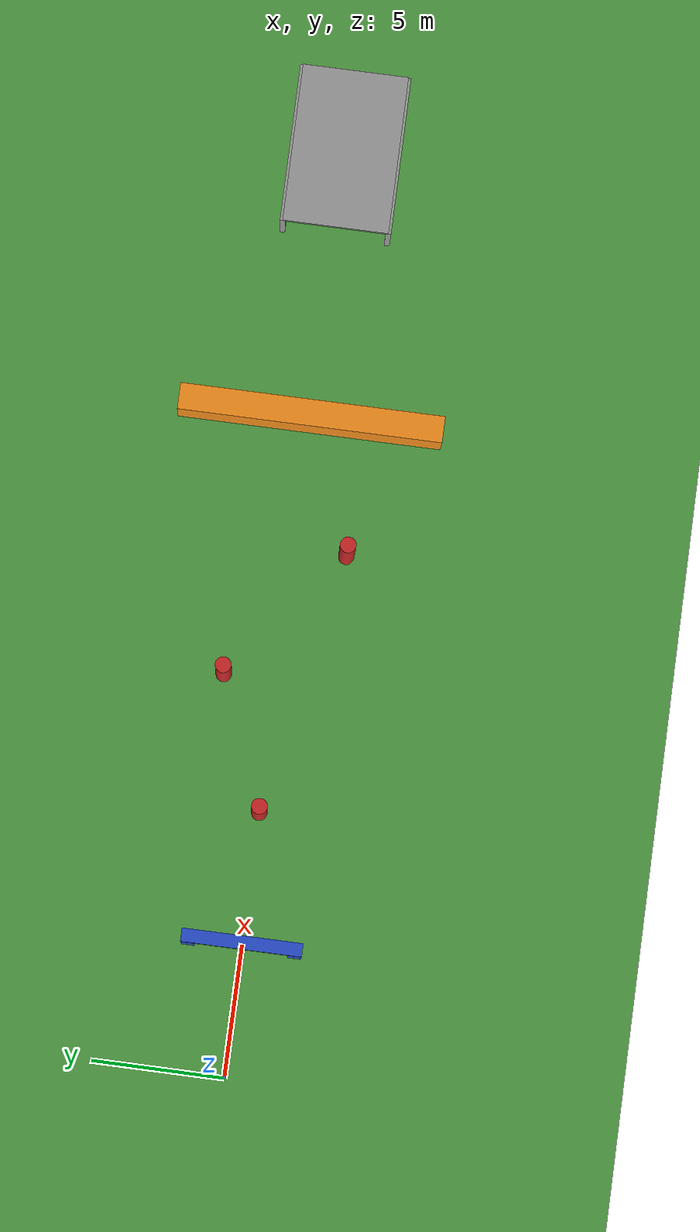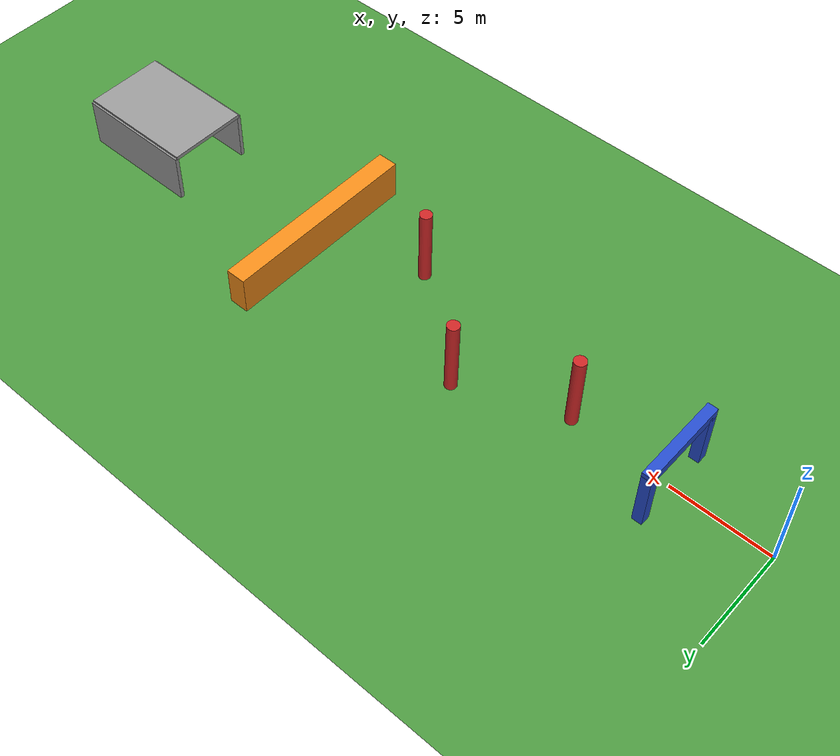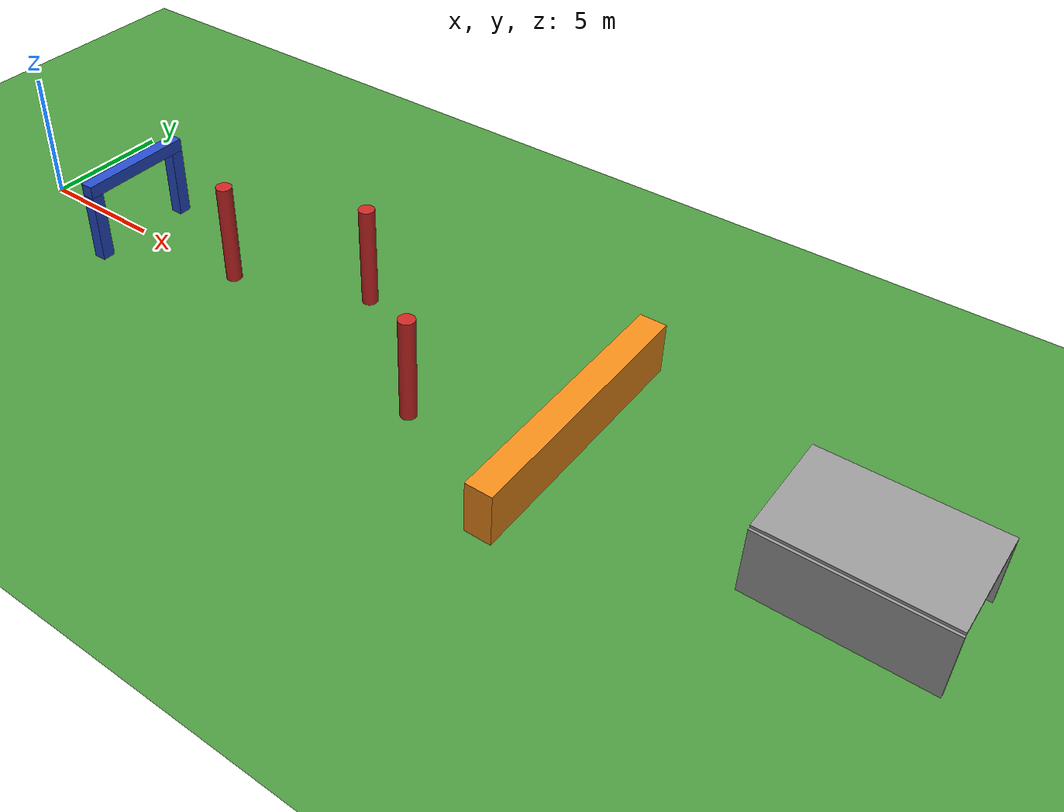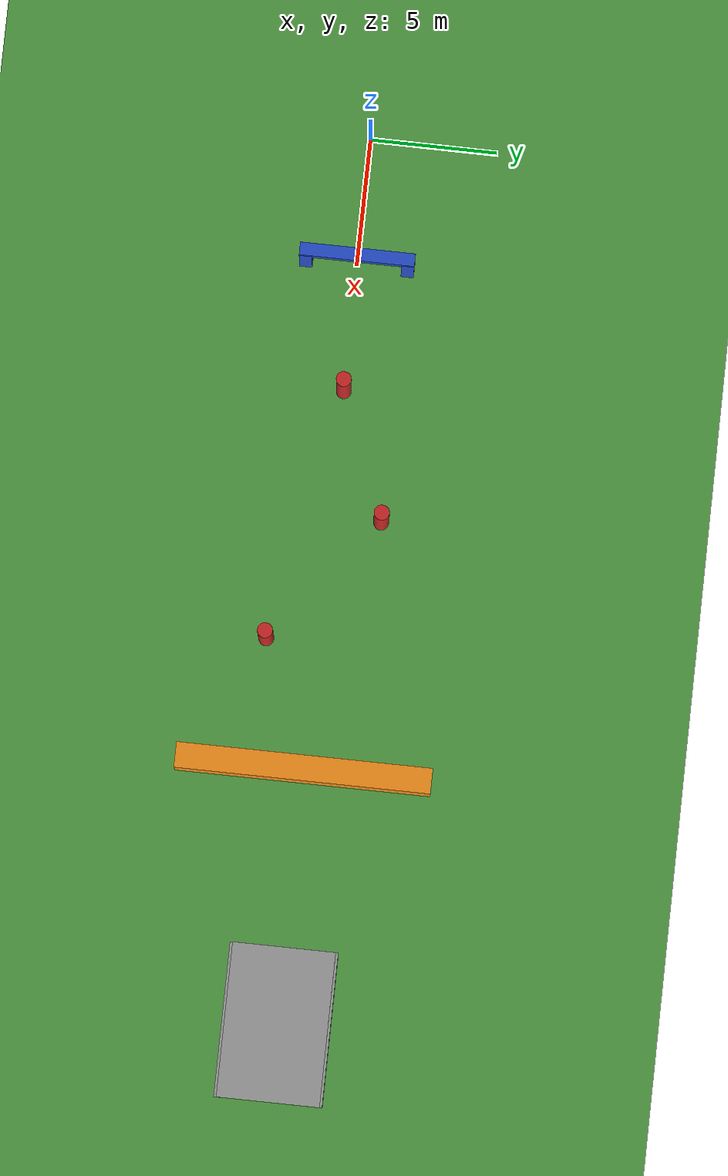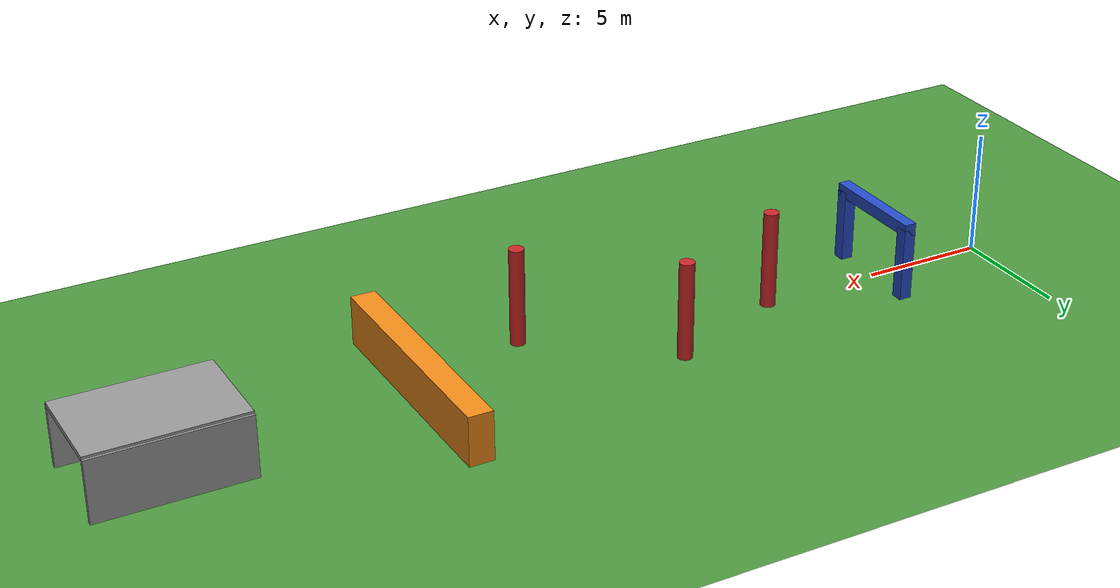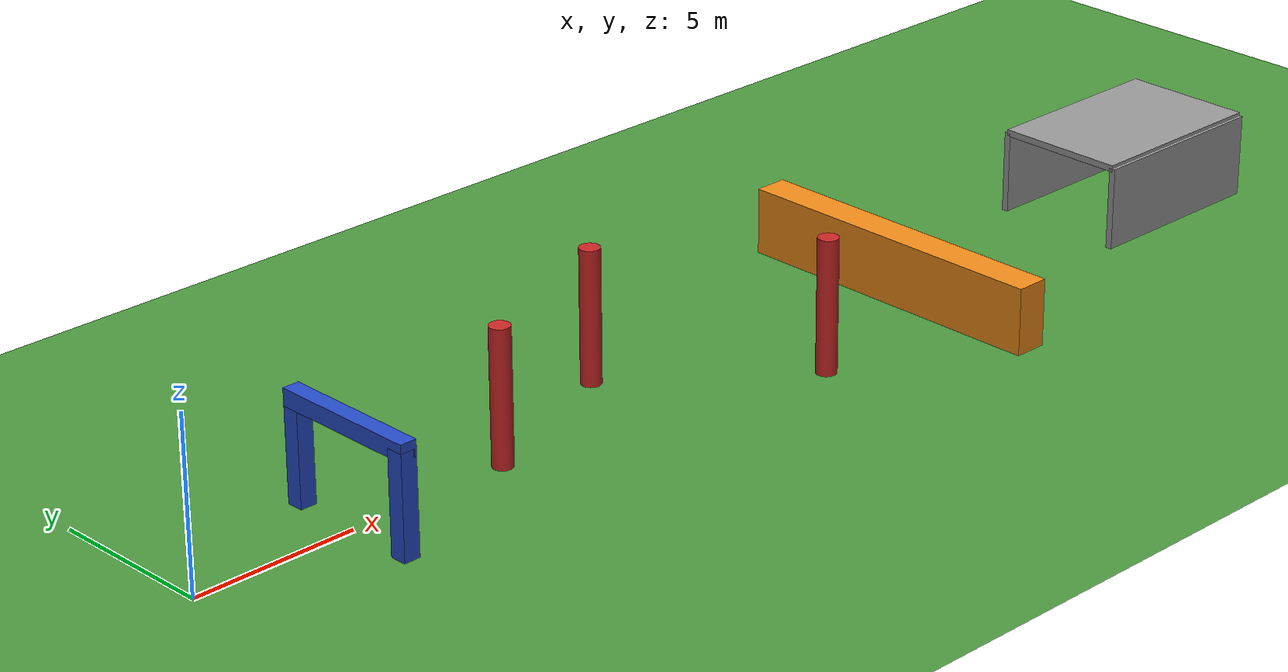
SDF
<?xml version="1.0" ?>
<sdf version="1.5">
  <world name="default">
    <include>
      <uri>model://sun</uri>
    </include>

    <model name="my_custom_ground">
      <static>true</static>
      <link name="link">
        <collision name="collision">
          <geometry>
            <plane>
              <normal>0 0 1</normal>
              <size>500 500</size>
            </plane>
          </geometry>
          <surface>
            <friction>
              <ode>
                <mu>100</mu>
                <mu2>50</mu2>
              </ode>
            </friction>
          </surface>
        </collision>
        <visual name="visual">
          <cast_shadows>false</cast_shadows>
          <geometry>
            <plane>
              <normal>0 0 1</normal>
              <size>500 500</size>
            </plane>
          </geometry>
          <material>
            <script>
              <uri>file://media/materials/scripts/gazebo.material</uri>
              <name>Gazebo/Grass</name>
            </script>
          </material>
        </visual>
      </link>
    </model>

    <model name="start_gate_left">
      <static>true</static>
      <pose>5 2 1.5 0 0 0</pose>
      <link name="link">
        <visual name="visual">
          <geometry><box><size>0.5 0.5 3</size></box></geometry>
          <material><script><name>Gazebo/Blue</name><uri>file://media/materials/scripts/gazebo.material</uri></script></material>
        </visual>
        <collision name="collision"><geometry><box><size>0.5 0.5 3</size></box></geometry></collision>
      </link>
    </model>
    <model name="start_gate_right">
      <static>true</static>
      <pose>5 -2 1.5 0 0 0</pose>
      <link name="link">
        <visual name="visual">
          <geometry><box><size>0.5 0.5 3</size></box></geometry>
          <material><script><name>Gazebo/Blue</name><uri>file://media/materials/scripts/gazebo.material</uri></script></material>
        </visual>
        <collision name="collision"><geometry><box><size>0.5 0.5 3</size></box></geometry></collision>
      </link>
    </model>
    <model name="start_gate_top">
      <static>true</static>
      <pose>5 0 3 0 0 0</pose>
      <link name="link">
        <visual name="visual">
          <geometry><box><size>0.5 4.5 0.5</size></box></geometry>
          <material><script><name>Gazebo/Blue</name><uri>file://media/materials/scripts/gazebo.material</uri></script></material>
        </visual>
        <collision name="collision"><geometry><box><size>0.5 4.5 0.5</size></box></geometry></collision>
      </link>
    </model>

    <model name="slalom_1">
      <static>true</static>
      <pose>10 0 2 0 0 0</pose>
      <link name="link">
        <visual name="visual">
          <geometry><cylinder><radius>0.3</radius><length>4</length></cylinder></geometry>
          <material><script><name>Gazebo/Red</name><uri>file://media/materials/scripts/gazebo.material</uri></script></material>
        </visual>
        <collision name="collision"><geometry><cylinder><radius>0.3</radius><length>4</length></cylinder></geometry></collision>
      </link>
    </model>
    <model name="slalom_2">
      <static>true</static>
      <pose>15 2 2 0 0 0</pose> <link name="link">
        <visual name="visual">
          <geometry><cylinder><radius>0.3</radius><length>4</length></cylinder></geometry>
          <material><script><name>Gazebo/Red</name><uri>file://media/materials/scripts/gazebo.material</uri></script></material>
        </visual>
        <collision name="collision"><geometry><cylinder><radius>0.3</radius><length>4</length></cylinder></geometry></collision>
      </link>
    </model>
    <model name="slalom_3">
      <static>true</static>
      <pose>20 -2 2 0 0 0</pose> <link name="link">
        <visual name="visual">
          <geometry><cylinder><radius>0.3</radius><length>4</length></cylinder></geometry>
          <material><script><name>Gazebo/Red</name><uri>file://media/materials/scripts/gazebo.material</uri></script></material>
        </visual>
        <collision name="collision"><geometry><cylinder><radius>0.3</radius><length>4</length></cylinder></geometry></collision>
      </link>
    </model>

    <model name="obstacle_wall">
      <static>true</static>
      <pose>25 0 1 0 0 0</pose>
      <link name="link">
        <visual name="visual">
          <geometry><box><size>1 10 2</size></box></geometry> <material><script><name>Gazebo/Orange</name><uri>file://media/materials/scripts/gazebo.material</uri></script></material>
        </visual>
        <collision name="collision"><geometry><box><size>1 10 2</size></box></geometry></collision>
      </link>
    </model>

    <model name="tunnel_roof">
      <static>true</static>
      <pose>35 0 2.5 0 0 0</pose>
      <link name="link">
        <visual name="visual">
          <geometry><box><size>6 4 0.2</size></box></geometry>
          <material><script><name>Gazebo/Grey</name><uri>file://media/materials/scripts/gazebo.material</uri></script></material>
        </visual>
        <collision name="collision"><geometry><box><size>6 4 0.2</size></box></geometry></collision>
      </link>
    </model>
    <model name="tunnel_wall_1">
      <static>true</static>
      <pose>35 2 1.25 0 0 0</pose>
      <link name="link">
        <visual name="visual">
          <geometry><box><size>6 0.2 2.5</size></box></geometry>
          <material><script><name>Gazebo/Grey</name><uri>file://media/materials/scripts/gazebo.material</uri></script></material>
        </visual>
        <collision name="collision"><geometry><box><size>6 0.2 2.5</size></box></geometry></collision>
      </link>
    </model>
    <model name="tunnel_wall_2">
      <static>true</static>
      <pose>35 -2 1.25 0 0 0</pose>
      <link name="link">
        <visual name="visual">
          <geometry><box><size>6 0.2 2.5</size></box></geometry>
          <material><script><name>Gazebo/Grey</name><uri>file://media/materials/scripts/gazebo.material</uri></script></material>
        </visual>
        <collision name="collision"><geometry><box><size>6 0.2 2.5</size></box></geometry></collision>
      </link>
    </model>

    <scene>
      <ambient>0.4 0.4 0.4 1</ambient>
      <background>0.7 0.7 0.7 1</background>
      <shadows>true</shadows>
      <sky><clouds><speed>12</speed></clouds></sky>
    </scene>

    <physics name='default_physics' default='0' type='ode'>
      <gravity>0 0 -9.8066</gravity>
      <ode>
        <solver><type>quick</type><iters>10</iters><sor>1.3</sor></solver>
        <constraints><cfm>0</cfm><erp>0.2</erp><contact_max_correcting_vel>100</contact_max_correcting_vel><contact_surface_layer>0.001</contact_surface_layer></constraints>
      </ode>
      <max_step_size>0.004</max_step_size>
      <real_time_factor>1</real_time_factor>
      <real_time_update_rate>250</real_time_update_rate>
      <magnetic_field>6.0e-6 2.3e-5 -4.2e-5</magnetic_field>
    </physics>
    <spherical_coordinates>
      <surface_model>EARTH_WGS84</surface_model>
      <latitude_deg>35.719961</latitude_deg>
      <longitude_deg>-120.766567</longitude_deg>
      <elevation>0</elevation>
      <heading_deg>0</heading_deg>
    </spherical_coordinates>
  </world>
</sdf>
